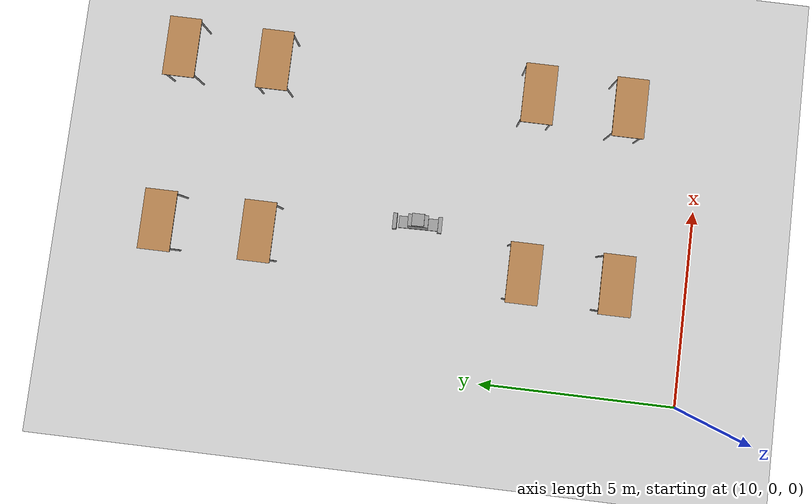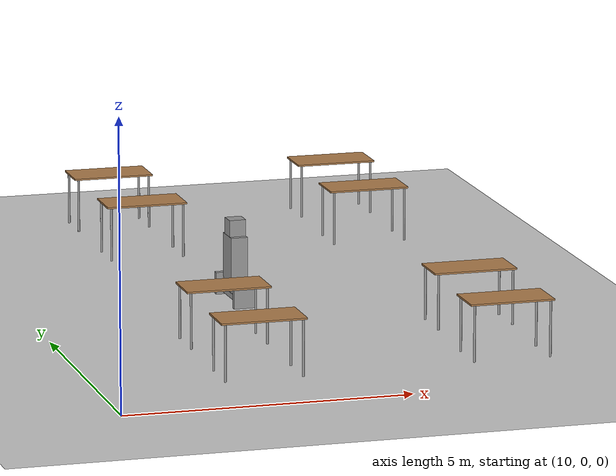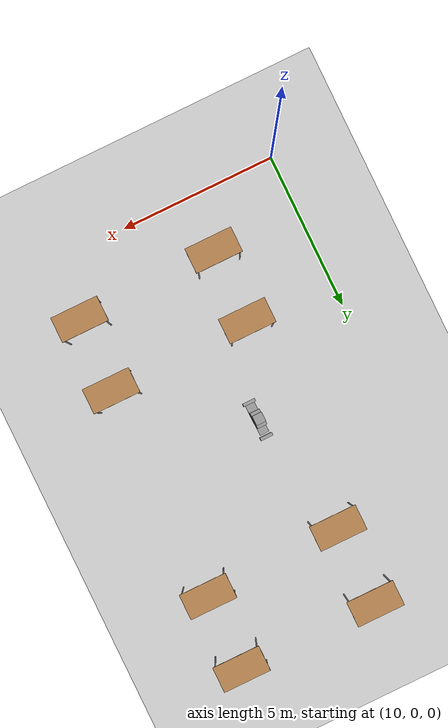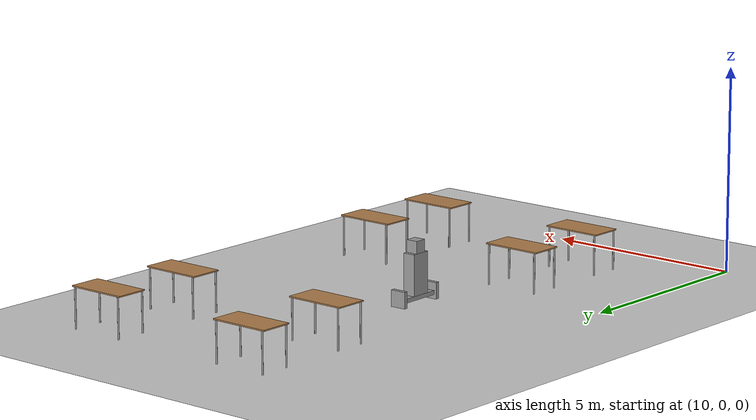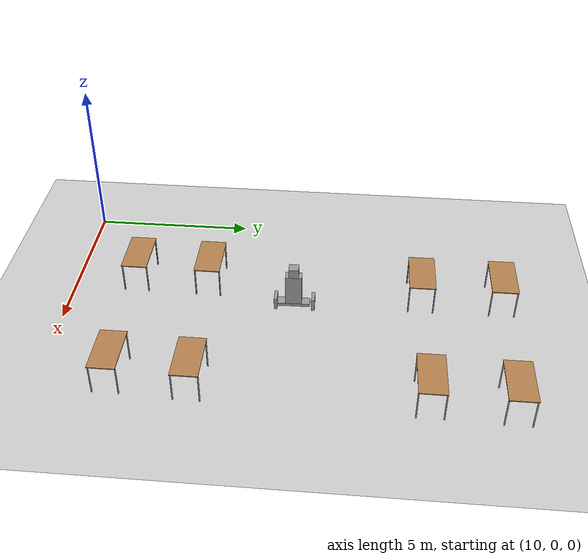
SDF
<sdf version="1.6">
 <world name="default">
  <model name="ground_plane">
   <static>1</static>
   <link name="link">
    <collision name="collision">
     <geometry><plane><normal>0 0 1</normal><size>100 100</size></plane></geometry>
     <surface>
      <contact><collide_bitmask>65535</collide_bitmask></contact>
      <friction><ode><mu>100</mu><mu2>50</mu2></ode></friction>
     </surface>
    </collision>
    <visual name="visual">
     <cast_shadows>0</cast_shadows>
     <geometry><plane><normal>0 0 1</normal><size>100 100</size></plane></geometry>
     <material>
      <script><uri>file://media/materials/scripts/gazebo.material</uri><name>Gazebo/Grey</name></script>
     </material>
    </visual>
   </link>
  </model>
  <model name="table">
   <static>1</static>
   <link name="link">
    <collision name="surface">
     <pose>0 0 1 0 -0 0</pose>
     <geometry><box><size>1.5 0.8 0.03</size></box></geometry>
     <surface><friction><ode><mu>0.6</mu><mu2>0.6</mu2></ode></friction></surface>
    </collision>
    <visual name="visual1">
     <pose>0 0 1 0 -0 0</pose>
     <geometry><box><size>1.5 0.8 0.03</size></box></geometry>
     <material>
      <script><uri>file://media/materials/scripts/gazebo.material</uri><name>Gazebo/Wood</name></script>
     </material>
    </visual>
    <collision name="front_left_leg">
     <pose>0.68 0.38 0.5 0 -0 0</pose>
     <geometry><cylinder><radius>0.02</radius><length>1</length></cylinder></geometry>
    </collision>
    <visual name="front_left_leg">
     <pose>0.68 0.38 0.5 0 -0 0</pose>
     <geometry><cylinder><radius>0.02</radius><length>1</length></cylinder></geometry>
     <material>
      <script><uri>file://media/materials/scripts/gazebo.material</uri><name>Gazebo/Grey</name></script>
     </material>
    </visual>
    <collision name="front_right_leg">
     <pose>0.68 -0.38 0.5 0 -0 0</pose>
     <geometry><cylinder><radius>0.02</radius><length>1</length></cylinder></geometry>
    </collision>
    <visual name="front_right_leg">
     <pose>0.68 -0.38 0.5 0 -0 0</pose>
     <geometry><cylinder><radius>0.02</radius><length>1</length></cylinder></geometry>
     <material>
      <script><uri>file://media/materials/scripts/gazebo.material</uri><name>Gazebo/Grey</name></script>
     </material>
    </visual>
    <collision name="back_right_leg">
     <pose>-0.68 -0.38 0.5 0 -0 0</pose>
     <geometry><cylinder><radius>0.02</radius><length>1</length></cylinder></geometry>
    </collision>
    <visual name="back_right_leg">
     <pose>-0.68 -0.38 0.5 0 -0 0</pose>
     <geometry><cylinder><radius>0.02</radius><length>1</length></cylinder></geometry>
     <material>
      <script><uri>file://media/materials/scripts/gazebo.material</uri><name>Gazebo/Grey</name></script>
     </material>
    </visual>
    <collision name="back_left_leg">
     <pose>-0.68 0.38 0.5 0 -0 0</pose>
     <geometry><cylinder><radius>0.02</radius><length>1</length></cylinder></geometry>
    </collision>
    <visual name="back_left_leg">
     <pose>-0.68 0.38 0.5 0 -0 0</pose>
     <geometry><cylinder><radius>0.02</radius><length>1</length></cylinder></geometry>
     <material>
      <script><uri>file://media/materials/scripts/gazebo.material</uri><name>Gazebo/Grey</name></script>
     </material>
    </visual>
   </link>
   <pose>17.3802 4.37607 0 0 -0 0</pose>
  </model>
  <model name="table_clone">
   <static>1</static>
   <link name="link">
    <collision name="surface">
     <pose>0 0 1 0 -0 0</pose>
     <geometry><box><size>1.5 0.8 0.03</size></box></geometry>
     <surface><friction><ode><mu>0.6</mu><mu2>0.6</mu2></ode></friction></surface>
    </collision>
    <visual name="visual1">
     <pose>0 0 1 0 -0 0</pose>
     <geometry><box><size>1.5 0.8 0.03</size></box></geometry>
     <material>
      <script><uri>file://media/materials/scripts/gazebo.material</uri><name>Gazebo/Wood</name></script>
     </material>
    </visual>
    <collision name="front_left_leg">
     <pose>0.68 0.38 0.5 0 -0 0</pose>
     <geometry><cylinder><radius>0.02</radius><length>1</length></cylinder></geometry>
    </collision>
    <visual name="front_left_leg">
     <pose>0.68 0.38 0.5 0 -0 0</pose>
     <geometry><cylinder><radius>0.02</radius><length>1</length></cylinder></geometry>
     <material>
      <script><uri>file://media/materials/scripts/gazebo.material</uri><name>Gazebo/Grey</name></script>
     </material>
    </visual>
    <collision name="front_right_leg">
     <pose>0.68 -0.38 0.5 0 -0 0</pose>
     <geometry><cylinder><radius>0.02</radius><length>1</length></cylinder></geometry>
    </collision>
    <visual name="front_right_leg">
     <pose>0.68 -0.38 0.5 0 -0 0</pose>
     <geometry><cylinder><radius>0.02</radius><length>1</length></cylinder></geometry>
     <material>
      <script><uri>file://media/materials/scripts/gazebo.material</uri><name>Gazebo/Grey</name></script>
     </material>
    </visual>
    <collision name="back_right_leg">
     <pose>-0.68 -0.38 0.5 0 -0 0</pose>
     <geometry><cylinder><radius>0.02</radius><length>1</length></cylinder></geometry>
    </collision>
    <visual name="back_right_leg">
     <pose>-0.68 -0.38 0.5 0 -0 0</pose>
     <geometry><cylinder><radius>0.02</radius><length>1</length></cylinder></geometry>
     <material>
      <script><uri>file://media/materials/scripts/gazebo.material</uri><name>Gazebo/Grey</name></script>
     </material>
    </visual>
    <collision name="back_left_leg">
     <pose>-0.68 0.38 0.5 0 -0 0</pose>
     <geometry><cylinder><radius>0.02</radius><length>1</length></cylinder></geometry>
    </collision>
    <visual name="back_left_leg">
     <pose>-0.68 0.38 0.5 0 -0 0</pose>
     <geometry><cylinder><radius>0.02</radius><length>1</length></cylinder></geometry>
     <material>
      <script><uri>file://media/materials/scripts/gazebo.material</uri><name>Gazebo/Grey</name></script>
     </material>
    </visual>
   </link>
   <pose>12.8854 1.98216 0 0 -0 0</pose>
  </model>
  <model name="table_clone_0">
   <static>1</static>
   <link name="link">
    <collision name="surface">
     <pose>0 0 1 0 -0 0</pose>
     <geometry><box><size>1.5 0.8 0.03</size></box></geometry>
     <surface><friction><ode><mu>0.6</mu><mu2>0.6</mu2></ode></friction></surface>
    </collision>
    <visual name="visual1">
     <pose>0 0 1 0 -0 0</pose>
     <geometry><box><size>1.5 0.8 0.03</size></box></geometry>
     <material>
      <script><uri>file://media/materials/scripts/gazebo.material</uri><name>Gazebo/Wood</name></script>
     </material>
    </visual>
    <collision name="front_left_leg">
     <pose>0.68 0.38 0.5 0 -0 0</pose>
     <geometry><cylinder><radius>0.02</radius><length>1</length></cylinder></geometry>
    </collision>
    <visual name="front_left_leg">
     <pose>0.68 0.38 0.5 0 -0 0</pose>
     <geometry><cylinder><radius>0.02</radius><length>1</length></cylinder></geometry>
     <material>
      <script><uri>file://media/materials/scripts/gazebo.material</uri><name>Gazebo/Grey</name></script>
     </material>
    </visual>
    <collision name="front_right_leg">
     <pose>0.68 -0.38 0.5 0 -0 0</pose>
     <geometry><cylinder><radius>0.02</radius><length>1</length></cylinder></geometry>
    </collision>
    <visual name="front_right_leg">
     <pose>0.68 -0.38 0.5 0 -0 0</pose>
     <geometry><cylinder><radius>0.02</radius><length>1</length></cylinder></geometry>
     <material>
      <script><uri>file://media/materials/scripts/gazebo.material</uri><name>Gazebo/Grey</name></script>
     </material>
    </visual>
    <collision name="back_right_leg">
     <pose>-0.68 -0.38 0.5 0 -0 0</pose>
     <geometry><cylinder><radius>0.02</radius><length>1</length></cylinder></geometry>
    </collision>
    <visual name="back_right_leg">
     <pose>-0.68 -0.38 0.5 0 -0 0</pose>
     <geometry><cylinder><radius>0.02</radius><length>1</length></cylinder></geometry>
     <material>
      <script><uri>file://media/materials/scripts/gazebo.material</uri><name>Gazebo/Grey</name></script>
     </material>
    </visual>
    <collision name="back_left_leg">
     <pose>-0.68 0.38 0.5 0 -0 0</pose>
     <geometry><cylinder><radius>0.02</radius><length>1</length></cylinder></geometry>
    </collision>
    <visual name="back_left_leg">
     <pose>-0.68 0.38 0.5 0 -0 0</pose>
     <geometry><cylinder><radius>0.02</radius><length>1</length></cylinder></geometry>
     <material>
      <script><uri>file://media/materials/scripts/gazebo.material</uri><name>Gazebo/Grey</name></script>
     </material>
    </visual>
   </link>
   <pose>12.9011 4.26699 0 0 -0 0</pose>
  </model>
  <model name="table_clone_1">
   <static>1</static>
   <link name="link">
    <collision name="surface">
     <pose>0 0 1 0 -0 0</pose>
     <geometry><box><size>1.5 0.8 0.03</size></box></geometry>
     <surface><friction><ode><mu>0.6</mu><mu2>0.6</mu2></ode></friction></surface>
    </collision>
    <visual name="visual1">
     <pose>0 0 1 0 -0 0</pose>
     <geometry><box><size>1.5 0.8 0.03</size></box></geometry>
     <material>
      <script><uri>file://media/materials/scripts/gazebo.material</uri><name>Gazebo/Wood</name></script>
     </material>
    </visual>
    <collision name="front_left_leg">
     <pose>0.68 0.38 0.5 0 -0 0</pose>
     <geometry><cylinder><radius>0.02</radius><length>1</length></cylinder></geometry>
    </collision>
    <visual name="front_left_leg">
     <pose>0.68 0.38 0.5 0 -0 0</pose>
     <geometry><cylinder><radius>0.02</radius><length>1</length></cylinder></geometry>
     <material>
      <script><uri>file://media/materials/scripts/gazebo.material</uri><name>Gazebo/Grey</name></script>
     </material>
    </visual>
    <collision name="front_right_leg">
     <pose>0.68 -0.38 0.5 0 -0 0</pose>
     <geometry><cylinder><radius>0.02</radius><length>1</length></cylinder></geometry>
    </collision>
    <visual name="front_right_leg">
     <pose>0.68 -0.38 0.5 0 -0 0</pose>
     <geometry><cylinder><radius>0.02</radius><length>1</length></cylinder></geometry>
     <material>
      <script><uri>file://media/materials/scripts/gazebo.material</uri><name>Gazebo/Grey</name></script>
     </material>
    </visual>
    <collision name="back_right_leg">
     <pose>-0.68 -0.38 0.5 0 -0 0</pose>
     <geometry><cylinder><radius>0.02</radius><length>1</length></cylinder></geometry>
    </collision>
    <visual name="back_right_leg">
     <pose>-0.68 -0.38 0.5 0 -0 0</pose>
     <geometry><cylinder><radius>0.02</radius><length>1</length></cylinder></geometry>
     <material>
      <script><uri>file://media/materials/scripts/gazebo.material</uri><name>Gazebo/Grey</name></script>
     </material>
    </visual>
    <collision name="back_left_leg">
     <pose>-0.68 0.38 0.5 0 -0 0</pose>
     <geometry><cylinder><radius>0.02</radius><length>1</length></cylinder></geometry>
    </collision>
    <visual name="back_left_leg">
     <pose>-0.68 0.38 0.5 0 -0 0</pose>
     <geometry><cylinder><radius>0.02</radius><length>1</length></cylinder></geometry>
     <material>
      <script><uri>file://media/materials/scripts/gazebo.material</uri><name>Gazebo/Grey</name></script>
     </material>
    </visual>
   </link>
   <pose>17.2977 2.08785 0 0 -0 0</pose>
  </model>
  <model name="table_1">
   <static>1</static>
   <link name="link">
    <collision name="surface">
     <pose>0 0 1 0 -0 0</pose>
     <geometry><box><size>1.5 0.8 0.03</size></box></geometry>
     <surface><friction><ode><mu>0.6</mu><mu2>0.6</mu2></ode></friction></surface>
    </collision>
    <visual name="visual1">
     <pose>0 0 1 0 -0 0</pose>
     <geometry><box><size>1.5 0.8 0.03</size></box></geometry>
     <material>
      <script><uri>file://media/materials/scripts/gazebo.material</uri><name>Gazebo/Wood</name></script>
     </material>
    </visual>
    <collision name="front_left_leg">
     <pose>0.68 0.38 0.5 0 -0 0</pose>
     <geometry><cylinder><radius>0.02</radius><length>1</length></cylinder></geometry>
    </collision>
    <visual name="front_left_leg">
     <pose>0.68 0.38 0.5 0 -0 0</pose>
     <geometry><cylinder><radius>0.02</radius><length>1</length></cylinder></geometry>
     <material>
      <script><uri>file://media/materials/scripts/gazebo.material</uri><name>Gazebo/Grey</name></script>
     </material>
    </visual>
    <collision name="front_right_leg">
     <pose>0.68 -0.38 0.5 0 -0 0</pose>
     <geometry><cylinder><radius>0.02</radius><length>1</length></cylinder></geometry>
    </collision>
    <visual name="front_right_leg">
     <pose>0.68 -0.38 0.5 0 -0 0</pose>
     <geometry><cylinder><radius>0.02</radius><length>1</length></cylinder></geometry>
     <material>
      <script><uri>file://media/materials/scripts/gazebo.material</uri><name>Gazebo/Grey</name></script>
     </material>
    </visual>
    <collision name="back_right_leg">
     <pose>-0.68 -0.38 0.5 0 -0 0</pose>
     <geometry><cylinder><radius>0.02</radius><length>1</length></cylinder></geometry>
    </collision>
    <visual name="back_right_leg">
     <pose>-0.68 -0.38 0.5 0 -0 0</pose>
     <geometry><cylinder><radius>0.02</radius><length>1</length></cylinder></geometry>
     <material>
      <script><uri>file://media/materials/scripts/gazebo.material</uri><name>Gazebo/Grey</name></script>
     </material>
    </visual>
    <collision name="back_left_leg">
     <pose>-0.68 0.38 0.5 0 -0 0</pose>
     <geometry><cylinder><radius>0.02</radius><length>1</length></cylinder></geometry>
    </collision>
    <visual name="back_left_leg">
     <pose>-0.68 0.38 0.5 0 -0 0</pose>
     <geometry><cylinder><radius>0.02</radius><length>1</length></cylinder></geometry>
     <material>
      <script><uri>file://media/materials/scripts/gazebo.material</uri><name>Gazebo/Grey</name></script>
     </material>
    </visual>
   </link>
   <pose>17.504 13.3719 0 0 -0 0</pose>
  </model>
  <model name="table_2">
   <static>1</static>
   <link name="link">
    <collision name="surface">
     <pose>0 0 1 0 -0 0</pose>
     <geometry><box><size>1.5 0.8 0.03</size></box></geometry>
     <surface><friction><ode><mu>0.6</mu><mu2>0.6</mu2></ode></friction></surface>
    </collision>
    <visual name="visual1">
     <pose>0 0 1 0 -0 0</pose>
     <geometry><box><size>1.5 0.8 0.03</size></box></geometry>
     <material>
      <script><uri>file://media/materials/scripts/gazebo.material</uri><name>Gazebo/Wood</name></script>
     </material>
    </visual>
    <collision name="front_left_leg">
     <pose>0.68 0.38 0.5 0 -0 0</pose>
     <geometry><cylinder><radius>0.02</radius><length>1</length></cylinder></geometry>
    </collision>
    <visual name="front_left_leg">
     <pose>0.68 0.38 0.5 0 -0 0</pose>
     <geometry><cylinder><radius>0.02</radius><length>1</length></cylinder></geometry>
     <material>
      <script><uri>file://media/materials/scripts/gazebo.material</uri><name>Gazebo/Grey</name></script>
     </material>
    </visual>
    <collision name="front_right_leg">
     <pose>0.68 -0.38 0.5 0 -0 0</pose>
     <geometry><cylinder><radius>0.02</radius><length>1</length></cylinder></geometry>
    </collision>
    <visual name="front_right_leg">
     <pose>0.68 -0.38 0.5 0 -0 0</pose>
     <geometry><cylinder><radius>0.02</radius><length>1</length></cylinder></geometry>
     <material>
      <script><uri>file://media/materials/scripts/gazebo.material</uri><name>Gazebo/Grey</name></script>
     </material>
    </visual>
    <collision name="back_right_leg">
     <pose>-0.68 -0.38 0.5 0 -0 0</pose>
     <geometry><cylinder><radius>0.02</radius><length>1</length></cylinder></geometry>
    </collision>
    <visual name="back_right_leg">
     <pose>-0.68 -0.38 0.5 0 -0 0</pose>
     <geometry><cylinder><radius>0.02</radius><length>1</length></cylinder></geometry>
     <material>
      <script><uri>file://media/materials/scripts/gazebo.material</uri><name>Gazebo/Grey</name></script>
     </material>
    </visual>
    <collision name="back_left_leg">
     <pose>-0.68 0.38 0.5 0 -0 0</pose>
     <geometry><cylinder><radius>0.02</radius><length>1</length></cylinder></geometry>
    </collision>
    <visual name="back_left_leg">
     <pose>-0.68 0.38 0.5 0 -0 0</pose>
     <geometry><cylinder><radius>0.02</radius><length>1</length></cylinder></geometry>
     <material>
      <script><uri>file://media/materials/scripts/gazebo.material</uri><name>Gazebo/Grey</name></script>
     </material>
    </visual>
   </link>
   <pose>13.1412 13.36 0 0 -0 0</pose>
  </model>
  <model name="table_clone_7">
   <static>1</static>
   <link name="link">
    <collision name="surface">
     <pose>0 0 1 0 -0 0</pose>
     <geometry><box><size>1.5 0.8 0.03</size></box></geometry>
     <surface><friction><ode><mu>0.6</mu><mu2>0.6</mu2></ode></friction></surface>
    </collision>
    <visual name="visual1">
     <pose>0 0 1 0 -0 0</pose>
     <geometry><box><size>1.5 0.8 0.03</size></box></geometry>
     <material>
      <script><uri>file://media/materials/scripts/gazebo.material</uri><name>Gazebo/Wood</name></script>
     </material>
    </visual>
    <collision name="front_left_leg">
     <pose>0.68 0.38 0.5 0 -0 0</pose>
     <geometry><cylinder><radius>0.02</radius><length>1</length></cylinder></geometry>
    </collision>
    <visual name="front_left_leg">
     <pose>0.68 0.38 0.5 0 -0 0</pose>
     <geometry><cylinder><radius>0.02</radius><length>1</length></cylinder></geometry>
     <material>
      <script><uri>file://media/materials/scripts/gazebo.material</uri><name>Gazebo/Grey</name></script>
     </material>
    </visual>
    <collision name="front_right_leg">
     <pose>0.68 -0.38 0.5 0 -0 0</pose>
     <geometry><cylinder><radius>0.02</radius><length>1</length></cylinder></geometry>
    </collision>
    <visual name="front_right_leg">
     <pose>0.68 -0.38 0.5 0 -0 0</pose>
     <geometry><cylinder><radius>0.02</radius><length>1</length></cylinder></geometry>
     <material>
      <script><uri>file://media/materials/scripts/gazebo.material</uri><name>Gazebo/Grey</name></script>
     </material>
    </visual>
    <collision name="back_right_leg">
     <pose>-0.68 -0.38 0.5 0 -0 0</pose>
     <geometry><cylinder><radius>0.02</radius><length>1</length></cylinder></geometry>
    </collision>
    <visual name="back_right_leg">
     <pose>-0.68 -0.38 0.5 0 -0 0</pose>
     <geometry><cylinder><radius>0.02</radius><length>1</length></cylinder></geometry>
     <material>
      <script><uri>file://media/materials/scripts/gazebo.material</uri><name>Gazebo/Grey</name></script>
     </material>
    </visual>
    <collision name="back_left_leg">
     <pose>-0.68 0.38 0.5 0 -0 0</pose>
     <geometry><cylinder><radius>0.02</radius><length>1</length></cylinder></geometry>
    </collision>
    <visual name="back_left_leg">
     <pose>-0.68 0.38 0.5 0 -0 0</pose>
     <geometry><cylinder><radius>0.02</radius><length>1</length></cylinder></geometry>
     <material>
      <script><uri>file://media/materials/scripts/gazebo.material</uri><name>Gazebo/Grey</name></script>
     </material>
    </visual>
   </link>
   <pose>17.455 11.0301 0 0 -0 0</pose>
  </model>
  <model name="table_clone_8">
   <static>1</static>
   <link name="link">
    <collision name="surface">
     <pose>0 0 1 0 -0 0</pose>
     <geometry><box><size>1.5 0.8 0.03</size></box></geometry>
     <surface><friction><ode><mu>0.6</mu><mu2>0.6</mu2></ode></friction></surface>
    </collision>
    <visual name="visual1">
     <pose>0 0 1 0 -0 0</pose>
     <geometry><box><size>1.5 0.8 0.03</size></box></geometry>
     <material>
      <script><uri>file://media/materials/scripts/gazebo.material</uri><name>Gazebo/Wood</name></script>
     </material>
    </visual>
    <collision name="front_left_leg">
     <pose>0.68 0.38 0.5 0 -0 0</pose>
     <geometry><cylinder><radius>0.02</radius><length>1</length></cylinder></geometry>
    </collision>
    <visual name="front_left_leg">
     <pose>0.68 0.38 0.5 0 -0 0</pose>
     <geometry><cylinder><radius>0.02</radius><length>1</length></cylinder></geometry>
     <material>
      <script><uri>file://media/materials/scripts/gazebo.material</uri><name>Gazebo/Grey</name></script>
     </material>
    </visual>
    <collision name="front_right_leg">
     <pose>0.68 -0.38 0.5 0 -0 0</pose>
     <geometry><cylinder><radius>0.02</radius><length>1</length></cylinder></geometry>
    </collision>
    <visual name="front_right_leg">
     <pose>0.68 -0.38 0.5 0 -0 0</pose>
     <geometry><cylinder><radius>0.02</radius><length>1</length></cylinder></geometry>
     <material>
      <script><uri>file://media/materials/scripts/gazebo.material</uri><name>Gazebo/Grey</name></script>
     </material>
    </visual>
    <collision name="back_right_leg">
     <pose>-0.68 -0.38 0.5 0 -0 0</pose>
     <geometry><cylinder><radius>0.02</radius><length>1</length></cylinder></geometry>
    </collision>
    <visual name="back_right_leg">
     <pose>-0.68 -0.38 0.5 0 -0 0</pose>
     <geometry><cylinder><radius>0.02</radius><length>1</length></cylinder></geometry>
     <material>
      <script><uri>file://media/materials/scripts/gazebo.material</uri><name>Gazebo/Grey</name></script>
     </material>
    </visual>
    <collision name="back_left_leg">
     <pose>-0.68 0.38 0.5 0 -0 0</pose>
     <geometry><cylinder><radius>0.02</radius><length>1</length></cylinder></geometry>
    </collision>
    <visual name="back_left_leg">
     <pose>-0.68 0.38 0.5 0 -0 0</pose>
     <geometry><cylinder><radius>0.02</radius><length>1</length></cylinder></geometry>
     <material>
      <script><uri>file://media/materials/scripts/gazebo.material</uri><name>Gazebo/Grey</name></script>
     </material>
    </visual>
   </link>
   <pose>13.1576 10.8929 0 0 -0 0</pose>
  </model>
  <model name="robot_clone">
   <link name="link_0">
    <inertial>
     <mass>1</mass>
     <inertia>
      <ixx>0.166667</ixx>
      <ixy>0</ixy>
      <ixz>0</ixz>
      <iyy>0.166667</iyy>
      <iyz>0</iyz>
      <izz>0.166667</izz>
     </inertia>
    </inertial>
    <visual name="visual">
     <geometry><box><size>0.3 1 0.1</size></box></geometry>
     <material>
      <lighting>1</lighting>
      <script><uri>file://media/materials/scripts/gazebo.material</uri><name>Gazebo/Grey</name></script>
      <shader type="pixel"><normal_map>__default__</normal_map></shader>
      <ambient>0.3 0.3 0.3 1</ambient>
      <diffuse>0.7 0.7 0.7 1</diffuse>
      <specular>0.01 0.01 0.01 1</specular>
      <emissive>0 0 0 1</emissive>
     </material>
    </visual>
    <collision name="collision">
     <geometry><box><size>0.3 1 0.1</size></box></geometry>
     <surface>
      <friction>
       <ode><mu>1</mu><mu2>1</mu2><fdir1>0 0 0</fdir1><slip1>0</slip1><slip2>0</slip2></ode>
       <torsional>
        <coefficient>1</coefficient>
        <patch_radius>0</patch_radius>
        <surface_radius>0</surface_radius>
        <use_patch_radius>1</use_patch_radius>
        <ode><slip>0</slip></ode>
       </torsional>
      </friction>
      <bounce><restitution_coefficient>0</restitution_coefficient><threshold>1e+06</threshold></bounce>
      <contact>
       <collide_without_contact>0</collide_without_contact>
       <collide_without_contact_bitmask>1</collide_without_contact_bitmask>
       <collide_bitmask>1</collide_bitmask>
       <ode>
        <soft_cfm>0</soft_cfm>
        <soft_erp>0.2</soft_erp>
        <kp>1e+13</kp>
        <kd>1</kd>
        <max_vel>0.01</max_vel>
        <min_depth>0</min_depth>
       </ode>
       <bullet>
        <split_impulse>1</split_impulse>
        <split_impulse_penetration_threshold>-0.01</split_impulse_penetration_threshold>
        <soft_cfm>0</soft_cfm>
        <soft_erp>0.2</soft_erp>
        <kp>1e+13</kp>
        <kd>1</kd>
       </bullet>
      </contact>
     </surface>
    </collision>
   </link>
   <link name="link_0_0">
    <pose>-0.000234 -4e-06 0.55 8e-06 -0.000508 3e-06</pose>
    <inertial>
     <mass>1</mass>
     <inertia>
      <ixx>0.166667</ixx>
      <ixy>0</ixy>
      <ixz>0</ixz>
      <iyy>0.166667</iyy>
      <iyz>0</iyz>
      <izz>0.166667</izz>
     </inertia>
    </inertial>
    <visual name="visual">
     <geometry><box><size>0.3 0.5 1</size></box></geometry>
     <material>
      <lighting>1</lighting>
      <script><uri>file://media/materials/scripts/gazebo.material</uri><name>Gazebo/Grey</name></script>
      <shader type="pixel"><normal_map>__default__</normal_map></shader>
      <ambient>0.3 0.3 0.3 1</ambient>
      <diffuse>0.7 0.7 0.7 1</diffuse>
      <specular>0.01 0.01 0.01 1</specular>
      <emissive>0 0 0 1</emissive>
     </material>
    </visual>
    <collision name="collision">
     <geometry><box><size>0.3 0.5 1</size></box></geometry>
     <surface>
      <friction>
       <ode><mu>1</mu><mu2>1</mu2><fdir1>0 0 0</fdir1><slip1>0</slip1><slip2>0</slip2></ode>
       <torsional>
        <coefficient>1</coefficient>
        <patch_radius>0</patch_radius>
        <surface_radius>0</surface_radius>
        <use_patch_radius>1</use_patch_radius>
        <ode><slip>0</slip></ode>
       </torsional>
      </friction>
      <bounce><restitution_coefficient>0</restitution_coefficient><threshold>1e+06</threshold></bounce>
      <contact>
       <collide_without_contact>0</collide_without_contact>
       <collide_without_contact_bitmask>1</collide_without_contact_bitmask>
       <collide_bitmask>1</collide_bitmask>
       <ode>
        <soft_cfm>0</soft_cfm>
        <soft_erp>0.2</soft_erp>
        <kp>1e+13</kp>
        <kd>1</kd>
        <max_vel>0.01</max_vel>
        <min_depth>0</min_depth>
       </ode>
       <bullet>
        <split_impulse>1</split_impulse>
        <split_impulse_penetration_threshold>-0.01</split_impulse_penetration_threshold>
        <soft_cfm>0</soft_cfm>
        <soft_erp>0.2</soft_erp>
        <kp>1e+13</kp>
        <kd>1</kd>
       </bullet>
      </contact>
     </surface>
    </collision>
   </link>
   <link name="link_0_1">
    <pose>0 0.6 0.045 0 -0 0</pose>
    <inertial>
     <mass>1</mass>
     <inertia>
      <ixx>0.166667</ixx>
      <ixy>0</ixy>
      <ixz>0</ixz>
      <iyy>0.166667</iyy>
      <iyz>0</iyz>
      <izz>0.166667</izz>
     </inertia>
    </inertial>
    <visual name="visual">
     <geometry><box><size>0.4 0.1 0.4</size></box></geometry>
     <material>
      <lighting>1</lighting>
      <script><uri>file://media/materials/scripts/gazebo.material</uri><name>Gazebo/Grey</name></script>
      <shader type="pixel"><normal_map>__default__</normal_map></shader>
      <ambient>0.3 0.3 0.3 1</ambient>
      <diffuse>0.7 0.7 0.7 1</diffuse>
      <specular>0.01 0.01 0.01 1</specular>
      <emissive>0 0 0 1</emissive>
     </material>
    </visual>
    <collision name="collision">
     <geometry><box><size>0.4 0.1 0.4</size></box></geometry>
     <surface>
      <friction>
       <ode><mu>1</mu><mu2>1</mu2><fdir1>0 0 0</fdir1><slip1>0</slip1><slip2>0</slip2></ode>
       <torsional>
        <coefficient>1</coefficient>
        <patch_radius>0</patch_radius>
        <surface_radius>0</surface_radius>
        <use_patch_radius>1</use_patch_radius>
        <ode><slip>0</slip></ode>
       </torsional>
      </friction>
      <bounce><restitution_coefficient>0</restitution_coefficient><threshold>1e+06</threshold></bounce>
      <contact>
       <collide_without_contact>0</collide_without_contact>
       <collide_without_contact_bitmask>1</collide_without_contact_bitmask>
       <collide_bitmask>1</collide_bitmask>
       <ode>
        <soft_cfm>0</soft_cfm>
        <soft_erp>0.2</soft_erp>
        <kp>1e+13</kp>
        <kd>1</kd>
        <max_vel>0.01</max_vel>
        <min_depth>0</min_depth>
       </ode>
       <bullet>
        <split_impulse>1</split_impulse>
        <split_impulse_penetration_threshold>-0.01</split_impulse_penetration_threshold>
        <soft_cfm>0</soft_cfm>
        <soft_erp>0.2</soft_erp>
        <kp>1e+13</kp>
        <kd>1</kd>
       </bullet>
      </contact>
     </surface>
    </collision>
   </link>
   <link name="link_0_1_clone">
    <pose>0 -0.55 0.045 0 -0 0</pose>
    <inertial>
     <mass>1</mass>
     <inertia>
      <ixx>0.166667</ixx>
      <ixy>0</ixy>
      <ixz>0</ixz>
      <iyy>0.166667</iyy>
      <iyz>0</iyz>
      <izz>0.166667</izz>
     </inertia>
    </inertial>
    <visual name="visual_0">
     <geometry><box><size>0.4 0.1 0.4</size></box></geometry>
     <material>
      <lighting>1</lighting>
      <script><uri>file://media/materials/scripts/gazebo.material</uri><name>Gazebo/Grey</name></script>
      <shader type="pixel"><normal_map>__default__</normal_map></shader>
      <ambient>0.3 0.3 0.3 1</ambient>
      <diffuse>0.7 0.7 0.7 1</diffuse>
      <specular>0.01 0.01 0.01 1</specular>
      <emissive>0 0 0 1</emissive>
     </material>
    </visual>
    <collision name="collision">
     <geometry><box><size>0.4 0.1 0.4</size></box></geometry>
     <surface>
      <friction>
       <ode><mu>1</mu><mu2>1</mu2><fdir1>0 0 0</fdir1><slip1>0</slip1><slip2>0</slip2></ode>
       <torsional>
        <coefficient>1</coefficient>
        <patch_radius>0</patch_radius>
        <surface_radius>0</surface_radius>
        <use_patch_radius>1</use_patch_radius>
        <ode><slip>0</slip></ode>
       </torsional>
      </friction>
      <bounce><restitution_coefficient>0</restitution_coefficient><threshold>1e+06</threshold></bounce>
      <contact>
       <collide_without_contact>0</collide_without_contact>
       <collide_without_contact_bitmask>1</collide_without_contact_bitmask>
       <collide_bitmask>1</collide_bitmask>
       <ode>
        <soft_cfm>0</soft_cfm>
        <soft_erp>0.2</soft_erp>
        <kp>1e+13</kp>
        <kd>1</kd>
        <max_vel>0.01</max_vel>
        <min_depth>0</min_depth>
       </ode>
       <bullet>
        <split_impulse>1</split_impulse>
        <split_impulse_penetration_threshold>-0.01</split_impulse_penetration_threshold>
        <soft_cfm>0</soft_cfm>
        <soft_erp>0.2</soft_erp>
        <kp>1e+13</kp>
        <kd>1</kd>
       </bullet>
      </contact>
     </surface>
    </collision>
   </link>
   <link name="link_1_0">
    <pose>-0.000564 -9e-06 1.2 8e-06 -0.000508 3e-06</pose>
    <inertial>
     <mass>1</mass>
     <inertia>
      <ixx>0.166667</ixx>
      <ixy>0</ixy>
      <ixz>0</ixz>
      <iyy>0.166667</iyy>
      <iyz>0</iyz>
      <izz>0.166667</izz>
     </inertia>
    </inertial>
    <visual name="visual">
     <geometry><box><size>0.3 0.3 0.3</size></box></geometry>
     <material>
      <lighting>1</lighting>
      <script><uri>file://media/materials/scripts/gazebo.material</uri><name>Gazebo/Grey</name></script>
      <shader type="pixel"><normal_map>__default__</normal_map></shader>
      <ambient>0.3 0.3 0.3 1</ambient>
      <diffuse>0.7 0.7 0.7 1</diffuse>
      <specular>0.01 0.01 0.01 1</specular>
      <emissive>0 0 0 1</emissive>
     </material>
    </visual>
    <collision name="collision">
     <geometry><box><size>0.3 0.3 0.3</size></box></geometry>
     <surface>
      <friction>
       <ode><mu>1</mu><mu2>1</mu2><fdir1>0 0 0</fdir1><slip1>0</slip1><slip2>0</slip2></ode>
       <torsional>
        <coefficient>1</coefficient>
        <patch_radius>0</patch_radius>
        <surface_radius>0</surface_radius>
        <use_patch_radius>1</use_patch_radius>
        <ode><slip>0</slip></ode>
       </torsional>
      </friction>
      <bounce><restitution_coefficient>0</restitution_coefficient><threshold>1e+06</threshold></bounce>
      <contact>
       <collide_without_contact>0</collide_without_contact>
       <collide_without_contact_bitmask>1</collide_without_contact_bitmask>
       <collide_bitmask>1</collide_bitmask>
       <ode>
        <soft_cfm>0</soft_cfm>
        <soft_erp>0.2</soft_erp>
        <kp>1e+13</kp>
        <kd>1</kd>
        <max_vel>0.01</max_vel>
        <min_depth>0</min_depth>
       </ode>
       <bullet>
        <split_impulse>1</split_impulse>
        <split_impulse_penetration_threshold>-0.01</split_impulse_penetration_threshold>
        <soft_cfm>0</soft_cfm>
        <soft_erp>0.2</soft_erp>
        <kp>1e+13</kp>
        <kd>1</kd>
       </bullet>
      </contact>
     </surface>
    </collision>
   </link>
   <joint name="link_0_0_JOINT_0" type="fixed">
    <parent>link_0</parent>
    <child>link_0_0</child>
    <physics>
     <ode><limit><cfm>0</cfm><erp>0.2</erp></limit><suspension><cfm>0</cfm><erp>0.2</erp></suspension></ode>
    </physics>
   </joint>
   <joint name="link_0_1_JOINT_0" type="fixed">
    <parent>link_0</parent>
    <child>link_0_1</child>
    <axis>
     <xyz>1 0 0</xyz>
     <use_parent_model_frame>0</use_parent_model_frame>
     <limit>
      <lower>-1.79769e+308</lower>
      <upper>1.79769e+308</upper>
      <effort>-1</effort>
      <velocity>-1</velocity>
     </limit>
     <dynamics>
      <spring_reference>0</spring_reference>
      <spring_stiffness>0</spring_stiffness>
      <damping>0</damping>
     </dynamics>
    </axis>
    <physics>
     <ode><limit><cfm>0</cfm><erp>0.2</erp></limit><suspension><cfm>0</cfm><erp>0.2</erp></suspension></ode>
    </physics>
   </joint>
   <joint name="link_0_1_clone_JOINT_1" type="fixed">
    <parent>link_0</parent>
    <child>link_0_1_clone</child>
    <physics>
     <ode><limit><cfm>0</cfm><erp>0.2</erp></limit><suspension><cfm>0</cfm><erp>0.2</erp></suspension></ode>
    </physics>
   </joint>
   <joint name="link_1_0_JOINT_1" type="fixed">
    <parent>link_0_0</parent>
    <child>link_1_0</child>
    <axis>
     <xyz>1 0 0</xyz>
     <use_parent_model_frame>0</use_parent_model_frame>
     <limit>
      <lower>-1.79769e+308</lower>
      <upper>1.79769e+308</upper>
      <effort>-1</effort>
      <velocity>-1</velocity>
     </limit>
     <dynamics>
      <spring_reference>0</spring_reference>
      <spring_stiffness>0</spring_stiffness>
      <damping>0</damping>
      <friction>0</friction>
     </dynamics>
    </axis>
    <physics>
     <ode><limit><cfm>0</cfm><erp>0.2</erp></limit><suspension><cfm>0</cfm><erp>0.2</erp></suspension></ode>
    </physics>
   </joint>
   <static>0</static>
   <pose>13.8641 6.99255 0.154999 -2e-06 -0 0.018398</pose>
  </model>
 </world>
</sdf>
